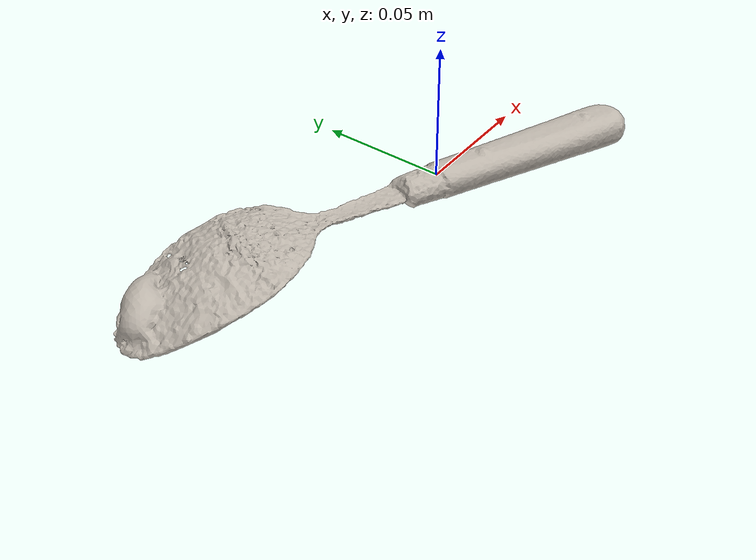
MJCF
<mujoco model="spoon">
  <compiler angle="radian" meshdir="assets" texturedir="assets"/>
    <default>
        <default class="ycb_col">
            <geom contype="1" conaffinity="1" group="3" rgba=".4 .5 .6 1"/>
        </default>
        <default class="ycb_viz">
            <geom contype="0" conaffinity="0" type="mesh" mass="0"/>
        </default>
    </default>
  <asset>
    <texture type="2d" name="spoon_tex" file="texture_map.png"/>
    <material name="spoon_mat" texture="spoon_tex" specular="0.5" shininess="0.5"/>
    <mesh file="textured.obj" name="spoon"/>
    <mesh file="textured_collision_0.obj" name="spoon_collision_0"/>
    <mesh file="textured_collision_1.obj" name="spoon_collision_1"/>
    <mesh file="textured_collision_2.obj" name="spoon_collision_2"/>
    <mesh file="textured_collision_3.obj" name="spoon_collision_3"/>
    <mesh file="textured_collision_4.obj" name="spoon_collision_4"/>
    <mesh file="textured_collision_5.obj" name="spoon_collision_5"/>
    <mesh file="textured_collision_6.obj" name="spoon_collision_6"/>
    <mesh file="textured_collision_7.obj" name="spoon_collision_7"/>
    <mesh file="textured_collision_8.obj" name="spoon_collision_8"/>
    <mesh file="textured_collision_9.obj" name="spoon_collision_9"/>
    <mesh file="textured_collision_10.obj" name="spoon_collision_10"/>
    <mesh file="textured_collision_11.obj" name="spoon_collision_11"/>
    <mesh file="textured_collision_12.obj" name="spoon_collision_12"/>
    <mesh file="textured_collision_13.obj" name="spoon_collision_13"/>
    <mesh file="textured_collision_14.obj" name="spoon_collision_14"/>
    <mesh file="textured_collision_15.obj" name="spoon_collision_15"/>
    <mesh file="textured_collision_16.obj" name="spoon_collision_16"/>
    <mesh file="textured_collision_17.obj" name="spoon_collision_17"/>
    <mesh file="textured_collision_18.obj" name="spoon_collision_18"/>
    <mesh file="textured_collision_19.obj" name="spoon_collision_19"/>
    <mesh file="textured_collision_20.obj" name="spoon_collision_20"/>
    <mesh file="textured_collision_21.obj" name="spoon_collision_21"/>
    <mesh file="textured_collision_22.obj" name="spoon_collision_22"/>
  </asset>
  <worldbody>
      <geom class="ycb_viz" material="spoon_mat" mesh="spoon"/>
      <geom mesh="spoon_collision_0" class="ycb_col" conaffinity="1" condim="4" friction="0.1 0.1 0.1" mass="0.0176724554587806" rgba="1 1 1 1" solimp="0.99 0.99 0.01" solref=".001 0.1" type="mesh" group="3"/>
      <geom mesh="spoon_collision_1" class="ycb_col" conaffinity="1" condim="4" friction="0.1 0.1 0.1" mass="0.0001348600563053153" rgba="1 1 1 1" solimp="0.99 0.99 0.01" solref=".001 0.1" type="mesh" group="3"/>
      <geom mesh="spoon_collision_2" class="ycb_col" conaffinity="1" condim="4" friction="0.1 0.1 0.1" mass="0.0003680233521431876" rgba="1 1 1 1" solimp="0.99 0.99 0.01" solref=".001 0.1" type="mesh" group="3"/>
      <geom mesh="spoon_collision_3" class="ycb_col" conaffinity="1" condim="4" friction="0.1 0.1 0.1" mass="0.0002471683027290543" rgba="1 1 1 1" solimp="0.99 0.99 0.01" solref=".001 0.1" type="mesh" group="3"/>
      <geom mesh="spoon_collision_4" class="ycb_col" conaffinity="1" condim="4" friction="0.1 0.1 0.1" mass="0.00025618350315688134" rgba="1 1 1 1" solimp="0.99 0.99 0.01" solref=".001 0.1" type="mesh" group="3"/>
      <geom mesh="spoon_collision_5" class="ycb_col" conaffinity="1" condim="4" friction="0.1 0.1 0.1" mass="0.00019924197176160742" rgba="1 1 1 1" solimp="0.99 0.99 0.01" solref=".001 0.1" type="mesh" group="3"/>
      <geom mesh="spoon_collision_6" class="ycb_col" conaffinity="1" condim="4" friction="0.1 0.1 0.1" mass="0.0006743316167162335" rgba="1 1 1 1" solimp="0.99 0.99 0.01" solref=".001 0.1" type="mesh" group="3"/>
      <geom mesh="spoon_collision_7" class="ycb_col" conaffinity="1" condim="4" friction="0.1 0.1 0.1" mass="8.685438595714535e-05" rgba="1 1 1 1" solimp="0.99 0.99 0.01" solref=".001 0.1" type="mesh" group="3"/>
      <geom mesh="spoon_collision_8" class="ycb_col" conaffinity="1" condim="4" friction="0.1 0.1 0.1" mass="0.000986858322580073" rgba="1 1 1 1" solimp="0.99 0.99 0.01" solref=".001 0.1" type="mesh" group="3"/>
      <geom mesh="spoon_collision_9" class="ycb_col" conaffinity="1" condim="4" friction="0.1 0.1 0.1" mass="0.00016356417975519892" rgba="1 1 1 1" solimp="0.99 0.99 0.01" solref=".001 0.1" type="mesh" group="3"/>
      <geom mesh="spoon_collision_10" class="ycb_col" conaffinity="1" condim="4" friction="0.1 0.1 0.1" mass="0.0002725142397156563" rgba="1 1 1 1" solimp="0.99 0.99 0.01" solref=".001 0.1" type="mesh" group="3"/>
      <geom mesh="spoon_collision_11" class="ycb_col" conaffinity="1" condim="4" friction="0.1 0.1 0.1" mass="0.00015318188636641457" rgba="1 1 1 1" solimp="0.99 0.99 0.01" solref=".001 0.1" type="mesh" group="3"/>
      <geom mesh="spoon_collision_12" class="ycb_col" conaffinity="1" condim="4" friction="0.1 0.1 0.1" mass="0.00020462322503909673" rgba="1 1 1 1" solimp="0.99 0.99 0.01" solref=".001 0.1" type="mesh" group="3"/>
      <geom mesh="spoon_collision_13" class="ycb_col" conaffinity="1" condim="4" friction="0.1 0.1 0.1" mass="9.48234944559625e-05" rgba="1 1 1 1" solimp="0.99 0.99 0.01" solref=".001 0.1" type="mesh" group="3"/>
      <geom mesh="spoon_collision_14" class="ycb_col" conaffinity="1" condim="4" friction="0.1 0.1 0.1" mass="0.00023215802244961446" rgba="1 1 1 1" solimp="0.99 0.99 0.01" solref=".001 0.1" type="mesh" group="3"/>
      <geom mesh="spoon_collision_15" class="ycb_col" conaffinity="1" condim="4" friction="0.1 0.1 0.1" mass="0.00017571810300544017" rgba="1 1 1 1" solimp="0.99 0.99 0.01" solref=".001 0.1" type="mesh" group="3"/>
      <geom mesh="spoon_collision_16" class="ycb_col" conaffinity="1" condim="4" friction="0.1 0.1 0.1" mass="0.00016673062876752456" rgba="1 1 1 1" solimp="0.99 0.99 0.01" solref=".001 0.1" type="mesh" group="3"/>
      <geom mesh="spoon_collision_17" class="ycb_col" conaffinity="1" condim="4" friction="0.1 0.1 0.1" mass="0.005279619397896431" rgba="1 1 1 1" solimp="0.99 0.99 0.01" solref=".001 0.1" type="mesh" group="3"/>
      <geom mesh="spoon_collision_18" class="ycb_col" conaffinity="1" condim="4" friction="0.1 0.1 0.1" mass="0.0013255623473646966" rgba="1 1 1 1" solimp="0.99 0.99 0.01" solref=".001 0.1" type="mesh" group="3"/>
      <geom mesh="spoon_collision_19" class="ycb_col" conaffinity="1" condim="4" friction="0.1 0.1 0.1" mass="0.0001500578864490961" rgba="1 1 1 1" solimp="0.99 0.99 0.01" solref=".001 0.1" type="mesh" group="3"/>
      <geom mesh="spoon_collision_20" class="ycb_col" conaffinity="1" condim="4" friction="0.1 0.1 0.1" mass="0.0008243617244033237" rgba="1 1 1 1" solimp="0.99 0.99 0.01" solref=".001 0.1" type="mesh" group="3"/>
      <geom mesh="spoon_collision_21" class="ycb_col" conaffinity="1" condim="4" friction="0.1 0.1 0.1" mass="0.00010629240600688786" rgba="1 1 1 1" solimp="0.99 0.99 0.01" solref=".001 0.1" type="mesh" group="3"/>
      <geom mesh="spoon_collision_22" class="ycb_col" conaffinity="1" condim="4" friction="0.1 0.1 0.1" mass="0.00022481548819455792" rgba="1 1 1 1" solimp="0.99 0.99 0.01" solref=".001 0.1" type="mesh" group="3"/>
  </worldbody>
</mujoco>
